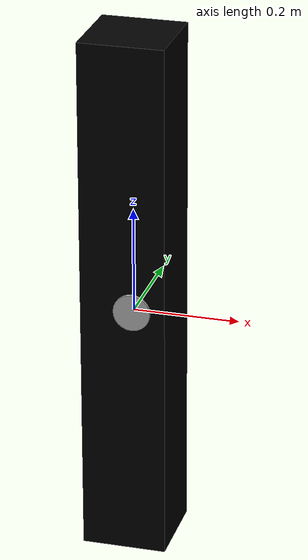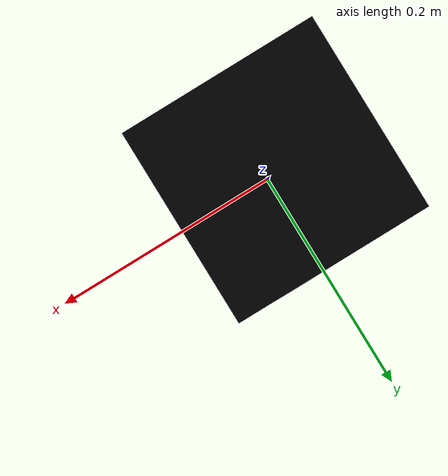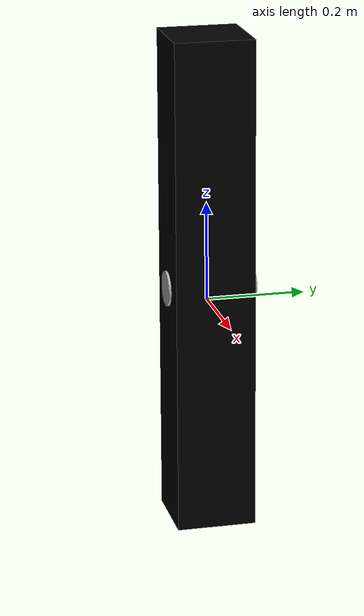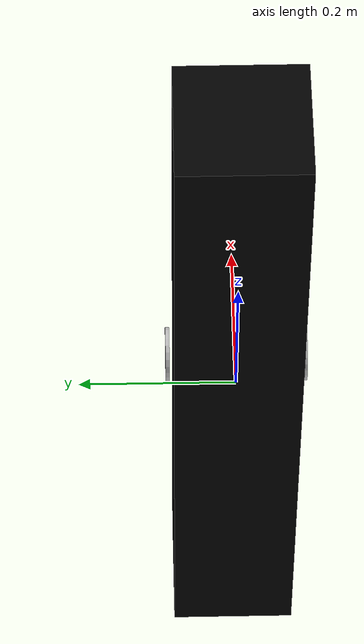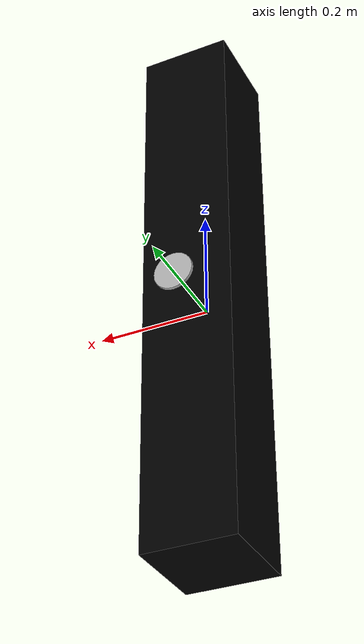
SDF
<?xml version='1.0'?>
<sdf version='1.6'>
  <model name='kbot'>
    <link name='base_footprint'>
      <pose frame=''>0 0 0 0 -0 0</pose>
      <inertial>
        <pose frame=''>0 0 0.003636 0 -0 0</pose>
        <mass>11</mass>
        <inertia>
          <ixx>0.00359788</ixx>
          <ixy>0</ixy>
          <ixz>0</ixz>
          <iyy>0.00572288</iyy>
          <iyz>0</iyz>
          <izz>0.00214333</izz>
        </inertia>
      </inertial>
      <self_collide>0</self_collide>
      <enable_wind>0</enable_wind>
      <kinematic>0</kinematic>
      <gravity>1</gravity>
      <visual name='base_footprint_visual'>
        <pose frame=''>0 0 0 0 -0 0</pose>
        <geometry>
          <box>
            <size>0.001 0.001 0.001</size>
          </box>
        </geometry>
        <material>
          <shader type='pixel'>
            <normal_map>__default__</normal_map>
          </shader>
          <script>
            <name>ModelPreview_1::base_footprint::base_footprint_visual_MATERIAL_</name>
          </script>
          <ambient>0 0 0 1</ambient>
          <diffuse>0 0 0 1</diffuse>
          <specular>0 0 0 1</specular>
          <emissive>0 0 0 1</emissive>
        </material>
        <transparency>0</transparency>
        <cast_shadows>1</cast_shadows>
      </visual>
      <visual name='base_footprint_fixed_joint_lump__base_link_visual_1'>
        <pose frame=''>0 0 0.04 0 -0 0</pose>
        <geometry>
          <box>
            <size>0.16 0.16 1</size>
          </box>
        </geometry>
        <material>
          <shader type='pixel'>
            <normal_map>__default__</normal_map>
          </shader>
          <script>
            <name>ModelPreview_1::base_footprint::base_footprint_fixed_joint_lump__base_link_visual_1_MATERIAL_</name>
          </script>
          <ambient>0.95 0.51 0.21 0</ambient>
          <diffuse>0 0 0 1</diffuse>
          <specular>0 0 0 1</specular>
          <emissive>0 0 0 1</emissive>
        </material>
        <transparency>0</transparency>
        <cast_shadows>1</cast_shadows>
      </visual>
      <collision name='base_footprint_fixed_joint_lump__base_link_collision'>
        <laser_retro>0</laser_retro>
        <max_contacts>10</max_contacts>
        <pose frame=''>0 0 0.04 0 -0 0</pose>
        <geometry>
          <box>
            <size>0.16 0.16 0.01</size>
          </box>
        </geometry>
        <surface>
          <friction>
            <ode>
              <mu>1</mu>
              <mu2>1</mu2>
              <fdir1>0 0 0</fdir1>
              <slip1>0</slip1>
              <slip2>0</slip2>
            </ode>
            <torsional>
              <coefficient>1</coefficient>
              <patch_radius>0</patch_radius>
              <surface_radius>0</surface_radius>
              <use_patch_radius>1</use_patch_radius>
              <ode>
                <slip>0</slip>
              </ode>
            </torsional>
          </friction>
          <bounce>
            <restitution_coefficient>0</restitution_coefficient>
            <threshold>1e+06</threshold>
          </bounce>
          <contact>
            <collide_without_contact>0</collide_without_contact>
            <collide_without_contact_bitmask>1</collide_without_contact_bitmask>
            <collide_bitmask>1</collide_bitmask>
            <ode>
              <soft_cfm>0</soft_cfm>
              <soft_erp>0.2</soft_erp>
              <kp>1e+13</kp>
              <kd>1</kd>
              <max_vel>0.01</max_vel>
              <min_depth>0</min_depth>
            </ode>
            <bullet>
              <split_impulse>1</split_impulse>
              <split_impulse_penetration_threshold>-0.01</split_impulse_penetration_threshold>
              <soft_cfm>0</soft_cfm>
              <soft_erp>0.2</soft_erp>
              <kp>1e+13</kp>
              <kd>1</kd>
            </bullet>
          </contact>
        </surface>
      </collision>
    </link>
    <link name='caster_wheel'>
      <pose frame=''>-0.052 0 0.0175 0 -0 0</pose>
      <inertial>
        <pose frame=''>0 0 0 0 -0 0</pose>
        <mass>1</mass>
        <inertia>
          <ixx>0.0001225</ixx>
          <ixy>0</ixy>
          <ixz>0</ixz>
          <iyy>0.0001225</iyy>
          <iyz>0</iyz>
          <izz>0.0001225</izz>
        </inertia>
      </inertial>
      <self_collide>0</self_collide>
      <enable_wind>0</enable_wind>
      <kinematic>0</kinematic>
      <visual name='caster_wheel_visual'>
        <pose frame=''>0 0 0 0 -0 0</pose>
        <geometry>
          <sphere>
            <radius>0.0175</radius>
          </sphere>
        </geometry>
        <material>
          <shader type='pixel'/>
        </material>
        <transparency>0</transparency>
        <cast_shadows>1</cast_shadows>
      </visual>
      <collision name='caster_wheel_collision'>
        <laser_retro>0</laser_retro>
        <max_contacts>10</max_contacts>
        <pose frame=''>0 0 0 0 -0 0</pose>
        <geometry>
          <sphere>
            <radius>0.0175</radius>
          </sphere>
        </geometry>
        <surface>
          <friction>
            <ode>
              <mu>1</mu>
              <mu2>1</mu2>
              <fdir1>0 0 0</fdir1>
              <slip1>0</slip1>
              <slip2>0</slip2>
            </ode>
            <torsional>
              <coefficient>1</coefficient>
              <patch_radius>0</patch_radius>
              <surface_radius>0</surface_radius>
              <use_patch_radius>1</use_patch_radius>
              <ode>
                <slip>0</slip>
              </ode>
            </torsional>
          </friction>
          <bounce>
            <restitution_coefficient>0</restitution_coefficient>
            <threshold>1e+06</threshold>
          </bounce>
          <contact>
            <collide_without_contact>0</collide_without_contact>
            <collide_without_contact_bitmask>1</collide_without_contact_bitmask>
            <collide_bitmask>1</collide_bitmask>
            <ode>
              <soft_cfm>0</soft_cfm>
              <soft_erp>0.2</soft_erp>
              <kp>1e+13</kp>
              <kd>1</kd>
              <max_vel>0.01</max_vel>
              <min_depth>0</min_depth>
            </ode>
            <bullet>
              <split_impulse>1</split_impulse>
              <split_impulse_penetration_threshold>-0.01</split_impulse_penetration_threshold>
              <soft_cfm>0</soft_cfm>
              <soft_erp>0.2</soft_erp>
              <kp>1e+13</kp>
              <kd>1</kd>
            </bullet>
          </contact>
        </surface>
      </collision>
    </link>
    <link name='left_wheel'>
      <pose frame=''>0.02 0.087 0.035 0 -0 0</pose>
      <inertial>
        <pose frame=''>0 0 0 0 -0 0</pose>
        <mass>1</mass>
        <inertia>
          <ixx>0.000308333</ixx>
          <ixy>0</ixy>
          <ixz>0</ixz>
          <iyy>0.000308333</iyy>
          <iyz>0</iyz>
          <izz>0.0006125</izz>
        </inertia>
      </inertial>
      <self_collide>0</self_collide>
      <enable_wind>0</enable_wind>
      <kinematic>0</kinematic>
      <visual name='left_wheel_visual'>
        <pose frame=''>0 0 0 1.5708 -0 0</pose>
        <geometry>
          <cylinder>
            <length>0.005</length>
            <radius>0.035</radius>
          </cylinder>
        </geometry>
        <material>
          <shader type='pixel'/>
        </material>
        <transparency>0</transparency>
        <cast_shadows>1</cast_shadows>
      </visual>
      <collision name='left_wheel_collision'>
        <laser_retro>0</laser_retro>
        <max_contacts>10</max_contacts>
        <pose frame=''>0 0 0 1.5708 -0 0</pose>
        <geometry>
          <cylinder>
            <radius>0.035</radius>
            <length>0.005</length>
          </cylinder>
        </geometry>
        <surface>
          <friction>
            <ode>
              <mu>1</mu>
              <mu2>1</mu2>
              <fdir1>0 0 0</fdir1>
              <slip1>0</slip1>
              <slip2>0</slip2>
            </ode>
            <torsional>
              <coefficient>1</coefficient>
              <patch_radius>0</patch_radius>
              <surface_radius>0</surface_radius>
              <use_patch_radius>1</use_patch_radius>
              <ode>
                <slip>0</slip>
              </ode>
            </torsional>
          </friction>
          <bounce>
            <restitution_coefficient>0</restitution_coefficient>
            <threshold>1e+06</threshold>
          </bounce>
          <contact>
            <collide_without_contact>0</collide_without_contact>
            <collide_without_contact_bitmask>1</collide_without_contact_bitmask>
            <collide_bitmask>1</collide_bitmask>
            <ode>
              <soft_cfm>0</soft_cfm>
              <soft_erp>0.2</soft_erp>
              <kp>1e+13</kp>
              <kd>1</kd>
              <max_vel>0.01</max_vel>
              <min_depth>0</min_depth>
            </ode>
            <bullet>
              <split_impulse>1</split_impulse>
              <split_impulse_penetration_threshold>-0.01</split_impulse_penetration_threshold>
              <soft_cfm>0</soft_cfm>
              <soft_erp>0.2</soft_erp>
              <kp>1e+13</kp>
              <kd>1</kd>
            </bullet>
          </contact>
        </surface>
      </collision>
    </link>
    <link name='right_wheel'>
      <pose frame=''>0.02 -0.087 0.035 0 -0 0</pose>
      <inertial>
        <pose frame=''>0 0 0 0 -0 0</pose>
        <mass>1</mass>
        <inertia>
          <ixx>0.000308333</ixx>
          <ixy>0</ixy>
          <ixz>0</ixz>
          <iyy>0.000308333</iyy>
          <iyz>0</iyz>
          <izz>0.0006125</izz>
        </inertia>
      </inertial>
      <self_collide>0</self_collide>
      <enable_wind>0</enable_wind>
      <kinematic>0</kinematic>
      <visual name='right_wheel_visual'>
        <pose frame=''>0 0 0 1.5708 -0 0</pose>
        <geometry>
          <cylinder>
            <length>0.005</length>
            <radius>0.035</radius>
          </cylinder>
        </geometry>
        <material>
          <shader type='pixel'/>
        </material>
        <transparency>0</transparency>
        <cast_shadows>1</cast_shadows>
      </visual>
      <collision name='right_wheel_collision'>
        <laser_retro>0</laser_retro>
        <max_contacts>10</max_contacts>
        <pose frame=''>0 0 0 1.5708 -0 0</pose>
        <geometry>
          <cylinder>
            <radius>0.035</radius>
            <length>0.005</length>
          </cylinder>
        </geometry>
        <surface>
          <friction>
            <ode>
              <mu>1</mu>
              <mu2>1</mu2>
              <fdir1>0 0 0</fdir1>
              <slip1>0</slip1>
              <slip2>0</slip2>
            </ode>
            <torsional>
              <coefficient>1</coefficient>
              <patch_radius>0</patch_radius>
              <surface_radius>0</surface_radius>
              <use_patch_radius>1</use_patch_radius>
              <ode>
                <slip>0</slip>
              </ode>
            </torsional>
          </friction>
          <bounce>
            <restitution_coefficient>0</restitution_coefficient>
            <threshold>1e+06</threshold>
          </bounce>
          <contact>
            <collide_without_contact>0</collide_without_contact>
            <collide_without_contact_bitmask>1</collide_without_contact_bitmask>
            <collide_bitmask>1</collide_bitmask>
            <ode>
              <soft_cfm>0</soft_cfm>
              <soft_erp>0.2</soft_erp>
              <kp>1e+13</kp>
              <kd>1</kd>
              <max_vel>0.01</max_vel>
              <min_depth>0</min_depth>
            </ode>
            <bullet>
              <split_impulse>1</split_impulse>
              <split_impulse_penetration_threshold>-0.01</split_impulse_penetration_threshold>
              <soft_cfm>0</soft_cfm>
              <soft_erp>0.2</soft_erp>
              <kp>1e+13</kp>
              <kd>1</kd>
            </bullet>
          </contact>
        </surface>
      </collision>
    </link>
    <joint name='caster_wheel_joint' type='revolute'>
      <parent>base_footprint</parent>
      <child>caster_wheel</child>
      <pose frame=''>0 0 0 0 -0 0</pose>
      <axis>
        <xyz>0 1 0</xyz>
        <use_parent_model_frame>1</use_parent_model_frame>
        <limit>
          <lower>-1e+16</lower>
          <upper>1e+16</upper>
          <effort>-1</effort>
          <velocity>-1</velocity>
        </limit>
        <dynamics>
          <spring_reference>0</spring_reference>
          <spring_stiffness>0</spring_stiffness>
          <damping>0</damping>
          <friction>0</friction>
        </dynamics>
      </axis>
      <physics>
        <ode>
          <limit>
            <cfm>0</cfm>
            <erp>0.2</erp>
          </limit>
          <suspension>
            <cfm>0</cfm>
            <erp>0.2</erp>
          </suspension>
        </ode>
      </physics>
    </joint>
    <joint name='left_wheel_joint' type='revolute'>
      <parent>base_footprint</parent>
      <child>left_wheel</child>
      <pose frame=''>0 0 0 0 -0 0</pose>
      <axis>
        <xyz>0 1 0</xyz>
        <use_parent_model_frame>1</use_parent_model_frame>
        <limit>
          <lower>-1e+16</lower>
          <upper>1e+16</upper>
          <effort>-1</effort>
          <velocity>-1</velocity>
        </limit>
        <dynamics>
          <spring_reference>0</spring_reference>
          <spring_stiffness>0</spring_stiffness>
          <damping>0</damping>
          <friction>0</friction>
        </dynamics>
      </axis>
      <physics>
        <ode>
          <limit>
            <cfm>0</cfm>
            <erp>0.2</erp>
          </limit>
          <suspension>
            <cfm>0</cfm>
            <erp>0.2</erp>
          </suspension>
        </ode>
      </physics>
    </joint>
    <joint name='right_wheel_joint' type='revolute'>
      <parent>base_footprint</parent>
      <child>right_wheel</child>
      <pose frame=''>0 0 0 0 -0 0</pose>
      <axis>
        <xyz>0 1 0</xyz>
        <use_parent_model_frame>1</use_parent_model_frame>
        <limit>
          <lower>-1e+16</lower>
          <upper>1e+16</upper>
          <effort>-1</effort>
          <velocity>-1</velocity>
        </limit>
        <dynamics>
          <spring_reference>0</spring_reference>
          <spring_stiffness>0</spring_stiffness>
          <damping>0</damping>
          <friction>0</friction>
        </dynamics>
      </axis>
      <physics>
        <ode>
          <limit>
            <cfm>0</cfm>
            <erp>0.2</erp>
          </limit>
          <suspension>
            <cfm>0</cfm>
            <erp>0.2</erp>
          </suspension>
        </ode>
      </physics>
    </joint>
    <static>0</static>
    <allow_auto_disable>1</allow_auto_disable>
    <plugin name='differential_drive_controller' filename='libgazebo_ros_diff_drive.so'>
      <alwaysOn>0</alwaysOn>
      <legacyMode>0</legacyMode>
      <updateRate>20</updateRate>
      <leftJoint>left_wheel_joint</leftJoint>
      <rightJoint>right_wheel_joint</rightJoint>
      <wheelSeparation>0.15</wheelSeparation>
      <wheelDiameter>0.07</wheelDiameter>
      <torque>20</torque>
      <commandTopic>/kbot/base_controller/cmd_vel</commandTopic>
      <odometryTopic>/kbot/base_controller/odom</odometryTopic>
      <odometryFrame>odom</odometryFrame>
      <robotBaseFrame>base_footprint</robotBaseFrame>
      <robotNamespace>/</robotNamespace>
    </plugin>
  </model>
</sdf>
